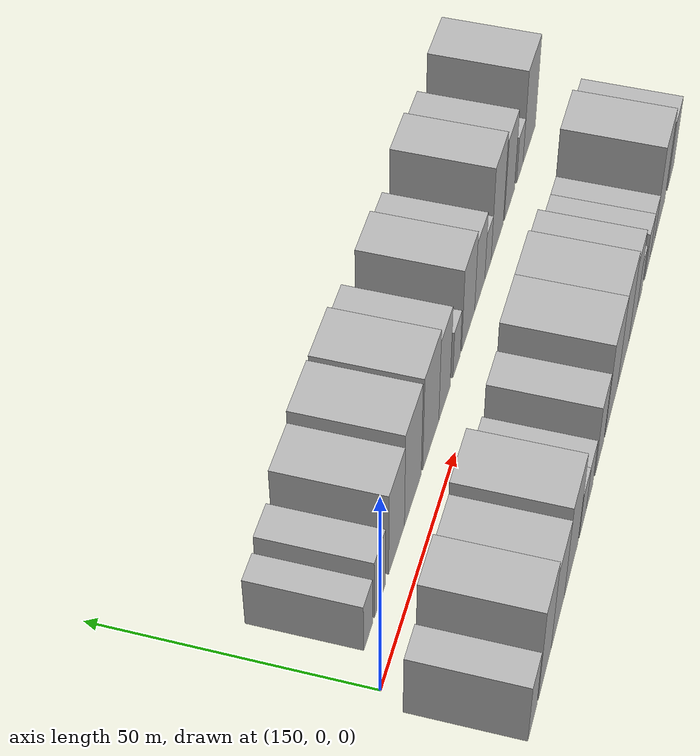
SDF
<sdf version="1.6">
 <world name="default">
  <model name="building_15">
   <static>1</static>
   <pose>159.2584 14.5000 0 0.000000 0.000000 1.570796</pose>
   <link name="link">
    <pose>0 0 6.00 0 0 0</pose>
    <collision name="collision"><geometry><box><size>20.0000 5.5288 12.0000</size></box></geometry></collision>
    <visual name="visual">
     <cast_shadows>0</cast_shadows>
     <geometry><box><size>20.0000 5.5288 12.0000</size></box></geometry>
     <material>
      <script>
       <uri>model://HANNAS_wall/materials/scripts</uri>
       <uri>model://HANNAS_wall/materials/textures</uri>
       <name>vrc/HANNAS_wall</name>
      </script>
     </material>
    </visual>
   </link>
  </model>
  <model name="building_16">
   <static>1</static>
   <pose>166.4911 14.5000 0 0.000000 0.000000 1.570796</pose>
   <link name="link">
    <pose>0 0 7.50 0 0 0</pose>
    <collision name="collision"><geometry><box><size>20.0000 6.9366 15.0000</size></box></geometry></collision>
    <visual name="visual">
     <cast_shadows>0</cast_shadows>
     <geometry><box><size>20.0000 6.9366 15.0000</size></box></geometry>
     <material>
      <script>
       <uri>model://HANNAS_wall/materials/scripts</uri>
       <uri>model://HANNAS_wall/materials/textures</uri>
       <name>vrc/HANNAS_wall</name>
      </script>
     </material>
    </visual>
   </link>
  </model>
  <model name="building_17">
   <static>1</static>
   <pose>177.1055 14.5000 0 0.000000 0.000000 1.570796</pose>
   <link name="link">
    <pose>0 0 10.50 0 0 0</pose>
    <collision name="collision"><geometry><box><size>20.0000 10.2922 21.0000</size></box></geometry></collision>
    <visual name="visual">
     <cast_shadows>0</cast_shadows>
     <geometry><box><size>20.0000 10.2922 21.0000</size></box></geometry>
     <material>
      <script>
       <uri>model://HANNAS_wall/materials/scripts</uri>
       <uri>model://HANNAS_wall/materials/textures</uri>
       <name>vrc/HANNAS_wall</name>
      </script>
     </material>
    </visual>
   </link>
  </model>
  <model name="building_18">
   <static>1</static>
   <pose>187.9631 14.5000 0 0.000000 0.000000 1.570796</pose>
   <link name="link">
    <pose>0 0 12.00 0 0 0</pose>
    <collision name="collision"><geometry><box><size>20.0000 11.4230 24.0000</size></box></geometry></collision>
    <visual name="visual">
     <cast_shadows>0</cast_shadows>
     <geometry><box><size>20.0000 11.4230 24.0000</size></box></geometry>
     <material>
      <script>
       <uri>model://HANNAS_wall/materials/scripts</uri>
       <uri>model://HANNAS_wall/materials/textures</uri>
       <name>vrc/HANNAS_wall</name>
      </script>
     </material>
    </visual>
   </link>
  </model>
  <model name="building_19">
   <static>1</static>
   <pose>200.4035 14.5000 0 0.000000 0.000000 1.570796</pose>
   <link name="link">
    <pose>0 0 12.00 0 0 0</pose>
    <collision name="collision"><geometry><box><size>20.0000 11.4579 24.0000</size></box></geometry></collision>
    <visual name="visual">
     <cast_shadows>0</cast_shadows>
     <geometry><box><size>20.0000 11.4579 24.0000</size></box></geometry>
     <material>
      <script>
       <uri>model://HANNAS_wall/materials/scripts</uri>
       <uri>model://HANNAS_wall/materials/textures</uri>
       <name>vrc/HANNAS_wall</name>
      </script>
     </material>
    </visual>
   </link>
  </model>
  <model name="building_20">
   <static>1</static>
   <pose>210.3536 14.5000 0 0.000000 0.000000 1.570796</pose>
   <link name="link">
    <pose>0 0 10.50 0 0 0</pose>
    <collision name="collision"><geometry><box><size>20.0000 8.4423 21.0000</size></box></geometry></collision>
    <visual name="visual">
     <cast_shadows>0</cast_shadows>
     <geometry><box><size>20.0000 8.4423 21.0000</size></box></geometry>
     <material>
      <script>
       <uri>model://HANNAS_wall/materials/scripts</uri>
       <uri>model://HANNAS_wall/materials/textures</uri>
       <name>vrc/HANNAS_wall</name>
      </script>
     </material>
    </visual>
   </link>
  </model>
  <model name="building_21">
   <static>1</static>
   <pose>219.4221 14.5000 0 0.000000 0.000000 1.570796</pose>
   <link name="link">
    <pose>0 0 6.00 0 0 0</pose>
    <collision name="collision"><geometry><box><size>20.0000 5.6946 12.0000</size></box></geometry></collision>
    <visual name="visual">
     <cast_shadows>0</cast_shadows>
     <geometry><box><size>20.0000 5.6946 12.0000</size></box></geometry>
     <material>
      <script>
       <uri>model://HANNAS_wall/materials/scripts</uri>
       <uri>model://HANNAS_wall/materials/textures</uri>
       <name>vrc/HANNAS_wall</name>
      </script>
     </material>
    </visual>
   </link>
  </model>
  <model name="building_22">
   <static>1</static>
   <pose>228.3806 14.5000 0 0.000000 0.000000 1.570796</pose>
   <link name="link">
    <pose>0 0 10.50 0 0 0</pose>
    <collision name="collision"><geometry><box><size>20.0000 10.2224 21.0000</size></box></geometry></collision>
    <visual name="visual">
     <cast_shadows>0</cast_shadows>
     <geometry><box><size>20.0000 10.2224 21.0000</size></box></geometry>
     <material>
      <script>
       <uri>model://HANNAS_wall/materials/scripts</uri>
       <uri>model://HANNAS_wall/materials/textures</uri>
       <name>vrc/HANNAS_wall</name>
      </script>
     </material>
    </visual>
   </link>
  </model>
  <model name="building_23">
   <static>1</static>
   <pose>237.6218 14.5000 0 0.000000 0.000000 1.570796</pose>
   <link name="link">
    <pose>0 0 9.00 0 0 0</pose>
    <collision name="collision"><geometry><box><size>20.0000 8.2601 18.0000</size></box></geometry></collision>
    <visual name="visual">
     <cast_shadows>0</cast_shadows>
     <geometry><box><size>20.0000 8.2601 18.0000</size></box></geometry>
     <material>
      <script>
       <uri>model://HANNAS_wall/materials/scripts</uri>
       <uri>model://HANNAS_wall/materials/textures</uri>
       <name>vrc/HANNAS_wall</name>
      </script>
     </material>
    </visual>
   </link>
  </model>
  <model name="building_24">
   <static>1</static>
   <pose>244.3933 14.5000 0 0.000000 0.000000 1.570796</pose>
   <link name="link">
    <pose>0 0 6.00 0 0 0</pose>
    <collision name="collision"><geometry><box><size>20.0000 5.2829 12.0000</size></box></geometry></collision>
    <visual name="visual">
     <cast_shadows>0</cast_shadows>
     <geometry><box><size>20.0000 5.2829 12.0000</size></box></geometry>
     <material>
      <script>
       <uri>model://HANNAS_wall/materials/scripts</uri>
       <uri>model://HANNAS_wall/materials/textures</uri>
       <name>vrc/HANNAS_wall</name>
      </script>
     </material>
    </visual>
   </link>
  </model>
  <model name="building_25">
   <static>1</static>
   <pose>252.2038 14.5000 0 0.000000 0.000000 1.570796</pose>
   <link name="link">
    <pose>0 0 12.00 0 0 0</pose>
    <collision name="collision"><geometry><box><size>20.0000 10.3381 24.0000</size></box></geometry></collision>
    <visual name="visual">
     <cast_shadows>0</cast_shadows>
     <geometry><box><size>20.0000 10.3381 24.0000</size></box></geometry>
     <material>
      <script>
       <uri>model://HANNAS_wall/materials/scripts</uri>
       <uri>model://HANNAS_wall/materials/textures</uri>
       <name>vrc/HANNAS_wall</name>
      </script>
     </material>
    </visual>
   </link>
  </model>
  <model name="building_26">
   <static>1</static>
   <pose>262.8360 14.5000 0 0.000000 0.000000 1.570796</pose>
   <link name="link">
    <pose>0 0 10.50 0 0 0</pose>
    <collision name="collision"><geometry><box><size>20.0000 8.9264 21.0000</size></box></geometry></collision>
    <visual name="visual">
     <cast_shadows>0</cast_shadows>
     <geometry><box><size>20.0000 8.9264 21.0000</size></box></geometry>
     <material>
      <script>
       <uri>model://HANNAS_wall/materials/scripts</uri>
       <uri>model://HANNAS_wall/materials/textures</uri>
       <name>vrc/HANNAS_wall</name>
      </script>
     </material>
    </visual>
   </link>
  </model>
  <model name="building_27">
   <static>1</static>
   <pose>272.1711 14.5000 0 0.000000 0.000000 1.570796</pose>
   <link name="link">
    <pose>0 0 6.00 0 0 0</pose>
    <collision name="collision"><geometry><box><size>20.0000 5.7438 12.0000</size></box></geometry></collision>
    <visual name="visual">
     <cast_shadows>0</cast_shadows>
     <geometry><box><size>20.0000 5.7438 12.0000</size></box></geometry>
     <material>
      <script>
       <uri>model://HANNAS_wall/materials/scripts</uri>
       <uri>model://HANNAS_wall/materials/textures</uri>
       <name>vrc/HANNAS_wall</name>
      </script>
     </material>
    </visual>
   </link>
  </model>
  <model name="building_28">
   <static>1</static>
   <pose>280.7774 14.5000 0 0.000000 0.000000 1.570796</pose>
   <link name="link">
    <pose>0 0 12.00 0 0 0</pose>
    <collision name="collision"><geometry><box><size>20.0000 11.4688 24.0000</size></box></geometry></collision>
    <visual name="visual">
     <cast_shadows>0</cast_shadows>
     <geometry><box><size>20.0000 11.4688 24.0000</size></box></geometry>
     <material>
      <script>
       <uri>model://HANNAS_wall/materials/scripts</uri>
       <uri>model://HANNAS_wall/materials/textures</uri>
       <name>vrc/HANNAS_wall</name>
      </script>
     </material>
    </visual>
   </link>
  </model>
  <model name="building_42">
   <static>1</static>
   <pose>150.4092 -14.5000 0 0.000000 0.000000 1.570796</pose>
   <link name="link">
    <pose>0 0 7.50 0 0 0</pose>
    <collision name="collision"><geometry><box><size>20.0000 6.6308 15.0000</size></box></geometry></collision>
    <visual name="visual">
     <cast_shadows>0</cast_shadows>
     <geometry><box><size>20.0000 6.6308 15.0000</size></box></geometry>
     <material>
      <script>
       <uri>model://HANNAS_wall/materials/scripts</uri>
       <uri>model://HANNAS_wall/materials/textures</uri>
       <name>vrc/HANNAS_wall</name>
      </script>
     </material>
    </visual>
   </link>
  </model>
  <model name="building_43">
   <static>1</static>
   <pose>159.6194 -14.5000 0 0.000000 0.000000 1.570796</pose>
   <link name="link">
    <pose>0 0 12.00 0 0 0</pose>
    <collision name="collision"><geometry><box><size>20.0000 9.7895 24.0000</size></box></geometry></collision>
    <visual name="visual">
     <cast_shadows>0</cast_shadows>
     <geometry><box><size>20.0000 9.7895 24.0000</size></box></geometry>
     <material>
      <script>
       <uri>model://HANNAS_wall/materials/scripts</uri>
       <uri>model://HANNAS_wall/materials/textures</uri>
       <name>vrc/HANNAS_wall</name>
      </script>
     </material>
    </visual>
   </link>
  </model>
  <model name="building_44">
   <static>1</static>
   <pose>169.7315 -14.5000 0 0.000000 0.000000 1.570796</pose>
   <link name="link">
    <pose>0 0 10.50 0 0 0</pose>
    <collision name="collision"><geometry><box><size>20.0000 10.4347 21.0000</size></box></geometry></collision>
    <visual name="visual">
     <cast_shadows>0</cast_shadows>
     <geometry><box><size>20.0000 10.4347 21.0000</size></box></geometry>
     <material>
      <script>
       <uri>model://HANNAS_wall/materials/scripts</uri>
       <uri>model://HANNAS_wall/materials/textures</uri>
       <name>vrc/HANNAS_wall</name>
      </script>
     </material>
    </visual>
   </link>
  </model>
  <model name="building_45">
   <static>1</static>
   <pose>180.6727 -14.5000 0 0.000000 0.000000 1.570796</pose>
   <link name="link">
    <pose>0 0 12.00 0 0 0</pose>
    <collision name="collision"><geometry><box><size>20.0000 11.4477 24.0000</size></box></geometry></collision>
    <visual name="visual">
     <cast_shadows>0</cast_shadows>
     <geometry><box><size>20.0000 11.4477 24.0000</size></box></geometry>
     <material>
      <script>
       <uri>model://HANNAS_wall/materials/scripts</uri>
       <uri>model://HANNAS_wall/materials/textures</uri>
       <name>vrc/HANNAS_wall</name>
      </script>
     </material>
    </visual>
   </link>
  </model>
  <model name="building_46">
   <static>1</static>
   <pose>190.3387 -14.5000 0 0.000000 0.000000 1.570796</pose>
   <link name="link">
    <pose>0 0 6.00 0 0 0</pose>
    <collision name="collision"><geometry><box><size>20.0000 5.8842 12.0000</size></box></geometry></collision>
    <visual name="visual">
     <cast_shadows>0</cast_shadows>
     <geometry><box><size>20.0000 5.8842 12.0000</size></box></geometry>
     <material>
      <script>
       <uri>model://HANNAS_wall/materials/scripts</uri>
       <uri>model://HANNAS_wall/materials/textures</uri>
       <name>vrc/HANNAS_wall</name>
      </script>
     </material>
    </visual>
   </link>
  </model>
  <model name="building_47">
   <static>1</static>
   <pose>196.2774 -14.5000 0 0.000000 0.000000 1.570796</pose>
   <link name="link">
    <pose>0 0 6.00 0 0 0</pose>
    <collision name="collision"><geometry><box><size>20.0000 5.9932 12.0000</size></box></geometry></collision>
    <visual name="visual">
     <cast_shadows>0</cast_shadows>
     <geometry><box><size>20.0000 5.9932 12.0000</size></box></geometry>
     <material>
      <script>
       <uri>model://HANNAS_wall/materials/scripts</uri>
       <uri>model://HANNAS_wall/materials/textures</uri>
       <name>vrc/HANNAS_wall</name>
      </script>
     </material>
    </visual>
   </link>
  </model>
  <model name="building_48">
   <static>1</static>
   <pose>205.2362 -14.5000 0 0.000000 0.000000 1.570796</pose>
   <link name="link">
    <pose>0 0 9.00 0 0 0</pose>
    <collision name="collision"><geometry><box><size>20.0000 7.9244 18.0000</size></box></geometry></collision>
    <visual name="visual">
     <cast_shadows>0</cast_shadows>
     <geometry><box><size>20.0000 7.9244 18.0000</size></box></geometry>
     <material>
      <script>
       <uri>model://HANNAS_wall/materials/scripts</uri>
       <uri>model://HANNAS_wall/materials/textures</uri>
       <name>vrc/HANNAS_wall</name>
      </script>
     </material>
    </visual>
   </link>
  </model>
  <model name="building_49">
   <static>1</static>
   <pose>216.1049 -14.5000 0 0.000000 0.000000 1.570796</pose>
   <link name="link">
    <pose>0 0 12.00 0 0 0</pose>
    <collision name="collision"><geometry><box><size>20.0000 11.8129 24.0000</size></box></geometry></collision>
    <visual name="visual">
     <cast_shadows>0</cast_shadows>
     <geometry><box><size>20.0000 11.8129 24.0000</size></box></geometry>
     <material>
      <script>
       <uri>model://HANNAS_wall/materials/scripts</uri>
       <uri>model://HANNAS_wall/materials/textures</uri>
       <name>vrc/HANNAS_wall</name>
      </script>
     </material>
    </visual>
   </link>
  </model>
  <model name="building_50">
   <static>1</static>
   <pose>227.5563 -14.5000 0 0.000000 0.000000 1.570796</pose>
   <link name="link">
    <pose>0 0 12.00 0 0 0</pose>
    <collision name="collision"><geometry><box><size>20.0000 11.0899 24.0000</size></box></geometry></collision>
    <visual name="visual">
     <cast_shadows>0</cast_shadows>
     <geometry><box><size>20.0000 11.0899 24.0000</size></box></geometry>
     <material>
      <script>
       <uri>model://HANNAS_wall/materials/scripts</uri>
       <uri>model://HANNAS_wall/materials/textures</uri>
       <name>vrc/HANNAS_wall</name>
      </script>
     </material>
    </visual>
   </link>
  </model>
  <model name="building_51">
   <static>1</static>
   <pose>237.4233 -14.5000 0 0.000000 0.000000 1.570796</pose>
   <link name="link">
    <pose>0 0 10.50 0 0 0</pose>
    <collision name="collision"><geometry><box><size>20.0000 8.6441 21.0000</size></box></geometry></collision>
    <visual name="visual">
     <cast_shadows>0</cast_shadows>
     <geometry><box><size>20.0000 8.6441 21.0000</size></box></geometry>
     <material>
      <script>
       <uri>model://HANNAS_wall/materials/scripts</uri>
       <uri>model://HANNAS_wall/materials/textures</uri>
       <name>vrc/HANNAS_wall</name>
      </script>
     </material>
    </visual>
   </link>
  </model>
  <model name="building_52">
   <static>1</static>
   <pose>244.2650 -14.5000 0 0.000000 0.000000 1.570796</pose>
   <link name="link">
    <pose>0 0 6.00 0 0 0</pose>
    <collision name="collision"><geometry><box><size>20.0000 5.0393 12.0000</size></box></geometry></collision>
    <visual name="visual">
     <cast_shadows>0</cast_shadows>
     <geometry><box><size>20.0000 5.0393 12.0000</size></box></geometry>
     <material>
      <script>
       <uri>model://HANNAS_wall/materials/scripts</uri>
       <uri>model://HANNAS_wall/materials/textures</uri>
       <name>vrc/HANNAS_wall</name>
      </script>
     </material>
    </visual>
   </link>
  </model>
  <model name="building_53">
   <static>1</static>
   <pose>252.6608 -14.5000 0 0.000000 0.000000 1.570796</pose>
   <link name="link">
    <pose>0 0 6.00 0 0 0</pose>
    <collision name="collision"><geometry><box><size>20.0000 5.7524 12.0000</size></box></geometry></collision>
    <visual name="visual">
     <cast_shadows>0</cast_shadows>
     <geometry><box><size>20.0000 5.7524 12.0000</size></box></geometry>
     <material>
      <script>
       <uri>model://HANNAS_wall/materials/scripts</uri>
       <uri>model://HANNAS_wall/materials/textures</uri>
       <name>vrc/HANNAS_wall</name>
      </script>
     </material>
    </visual>
   </link>
  </model>
  <model name="building_54">
   <static>1</static>
   <pose>258.0557 -14.5000 0 0.000000 0.000000 1.570796</pose>
   <link name="link">
    <pose>0 0 6.00 0 0 0</pose>
    <collision name="collision"><geometry><box><size>20.0000 5.0374 12.0000</size></box></geometry></collision>
    <visual name="visual">
     <cast_shadows>0</cast_shadows>
     <geometry><box><size>20.0000 5.0374 12.0000</size></box></geometry>
     <material>
      <script>
       <uri>model://HANNAS_wall/materials/scripts</uri>
       <uri>model://HANNAS_wall/materials/textures</uri>
       <name>vrc/HANNAS_wall</name>
      </script>
     </material>
    </visual>
   </link>
  </model>
  <model name="building_55">
   <static>1</static>
   <pose>266.2636 -14.5000 0 0.000000 0.000000 1.570796</pose>
   <link name="link">
    <pose>0 0 12.00 0 0 0</pose>
    <collision name="collision"><geometry><box><size>20.0000 11.3784 24.0000</size></box></geometry></collision>
    <visual name="visual">
     <cast_shadows>0</cast_shadows>
     <geometry><box><size>20.0000 11.3784 24.0000</size></box></geometry>
     <material>
      <script>
       <uri>model://HANNAS_wall/materials/scripts</uri>
       <uri>model://HANNAS_wall/materials/textures</uri>
       <name>vrc/HANNAS_wall</name>
      </script>
     </material>
    </visual>
   </link>
  </model>
  <model name="building_56">
   <static>1</static>
   <pose>278.7553 -14.5000 0 0.000000 0.000000 1.570796</pose>
   <link name="link">
    <pose>0 0 9.00 0 0 0</pose>
    <collision name="collision"><geometry><box><size>20.0000 7.6050 18.0000</size></box></geometry></collision>
    <visual name="visual">
     <cast_shadows>0</cast_shadows>
     <geometry><box><size>20.0000 7.6050 18.0000</size></box></geometry>
     <material>
      <script>
       <uri>model://HANNAS_wall/materials/scripts</uri>
       <uri>model://HANNAS_wall/materials/textures</uri>
       <name>vrc/HANNAS_wall</name>
      </script>
     </material>
    </visual>
   </link>
  </model>
 </world>
</sdf>
